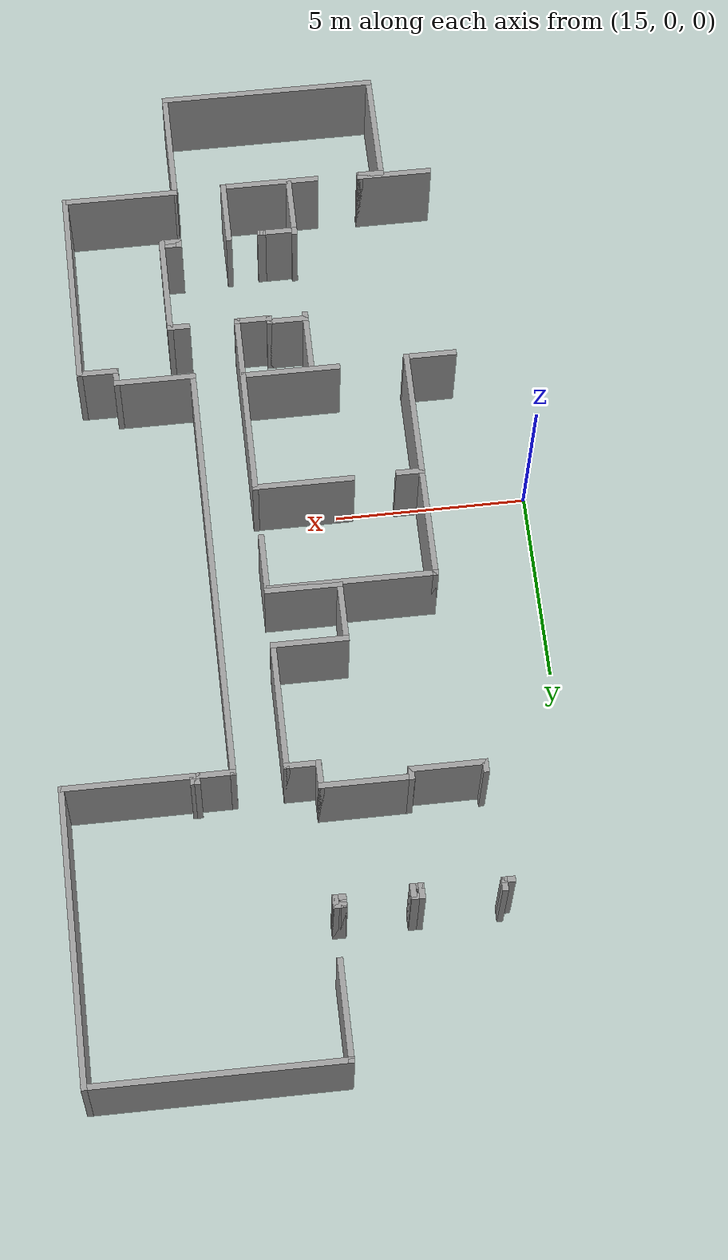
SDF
<sdf version="1.7">
 <model name="NursingHome">
  <pose>-0.88842 0.073115 0 0 -0 0</pose>
  <link name="Wall_11">
   <collision name="Wall_11_Collision">
    <geometry><box><size>0.199602 0.15 2.5</size></box></geometry>
    <pose>0 0 1.25 0 -0 0</pose>
   </collision>
   <visual name="Wall_11_Visual">
    <pose>0 0 1.25 0 -0 0</pose>
    <geometry><box><size>0.199602 0.15 2.5</size></box></geometry>
    <material>
     <script><uri>file://media/materials/scripts/gazebo.material</uri><name>Gazebo/Grey</name></script>
     <ambient>1 1 1 1</ambient>
    </material>
    <meta><layer>0</layer></meta>
   </visual>
   <pose>24.333 -9.06025 0 0 -0 1.33682</pose>
  </link>
  <link name="Wall_12">
   <collision name="Wall_12_Collision">
    <geometry><box><size>3.1 0.15 2.5</size></box></geometry>
    <pose>0 0 1.25 0 -0 0</pose>
   </collision>
   <visual name="Wall_12_Visual">
    <pose>0 0 1.25 0 -0 0</pose>
    <geometry><box><size>3.1 0.15 2.5</size></box></geometry>
    <material>
     <script><uri>file://media/materials/scripts/gazebo.material</uri><name>Gazebo/Grey</name></script>
     <ambient>1 1 1 1</ambient>
    </material>
    <meta><layer>0</layer></meta>
   </visual>
   <pose>25.8138 -9.03613 0 0 -0 0</pose>
  </link>
  <link name="Wall_17">
   <collision name="Wall_17_Collision">
    <geometry><box><size>5.4 0.15 2.5</size></box></geometry>
    <pose>0 0 1.25 0 -0 0</pose>
   </collision>
   <visual name="Wall_17_Visual">
    <pose>0 0 1.25 0 -0 0</pose>
    <geometry><box><size>5.4 0.15 2.5</size></box></geometry>
    <material>
     <script><uri>file://media/materials/scripts/gazebo.material</uri><name>Gazebo/Grey</name></script>
     <ambient>1 1 1 1</ambient>
    </material>
    <meta><layer>0</layer></meta>
   </visual>
   <pose>27.2888 -6.41113 0 0 -0 1.5708</pose>
  </link>
  <link name="Wall_19">
   <collision name="Wall_19_Collision">
    <geometry><box><size>1.1 0.15 2.5</size></box></geometry>
    <pose>0 0 1.25 0 -0 0</pose>
   </collision>
   <visual name="Wall_19_Visual">
    <pose>0 0 1.25 0 -0 0</pose>
    <geometry><box><size>1.1 0.15 2.5</size></box></geometry>
    <material>
     <script><uri>file://media/materials/scripts/gazebo.material</uri><name>Gazebo/Grey</name></script>
     <ambient>1 1 1 1</ambient>
    </material>
    <meta><layer>0</layer></meta>
   </visual>
   <pose>26.8138 -3.78613 0 0 -0 3.14159</pose>
  </link>
  <link name="Wall_21">
   <collision name="Wall_21_Collision">
    <geometry><box><size>0.5115 0.15 2.5</size></box></geometry>
    <pose>0 0 1.25 0 -0 0</pose>
   </collision>
   <visual name="Wall_21_Visual">
    <pose>0 0 1.25 0 -0 0</pose>
    <geometry><box><size>0.5115 0.15 2.5</size></box></geometry>
    <material>
     <script><uri>file://media/materials/scripts/gazebo.material</uri><name>Gazebo/Grey</name></script>
     <ambient>1 1 1 1</ambient>
    </material>
    <meta><layer>0</layer></meta>
   </visual>
   <pose>26.3388 -3.60538 0 0 -0 1.5708</pose>
  </link>
  <link name="Wall_22">
   <collision name="Wall_22_Collision">
    <geometry><box><size>2.15 0.15 2.5</size></box></geometry>
    <pose>0 0 1.25 0 -0 0</pose>
   </collision>
   <visual name="Wall_22_Visual">
    <pose>0 0 1.25 0 -0 0</pose>
    <geometry><box><size>2.15 0.15 2.5</size></box></geometry>
    <material>
     <script><uri>file://media/materials/scripts/gazebo.material</uri><name>Gazebo/Grey</name></script>
     <ambient>1 1 1 1</ambient>
    </material>
    <meta><layer>0</layer></meta>
   </visual>
   <pose>25.3388 -3.42463 0 0 -0 3.14159</pose>
  </link>
  <link name="Wall_26">
   <collision name="Wall_26_Collision">
    <geometry><box><size>11.25 0.15 2.5</size></box></geometry>
    <pose>0 0 1.25 0 -0 0</pose>
   </collision>
   <visual name="Wall_26_Visual">
    <pose>0 0 1.25 0 -0 0</pose>
    <geometry><box><size>11.25 0.15 2.5</size></box></geometry>
    <material>
     <script><uri>file://media/materials/scripts/gazebo.material</uri><name>Gazebo/Grey</name></script>
     <ambient>1 1 1 1</ambient>
    </material>
    <meta><layer>0</layer></meta>
   </visual>
   <pose>24.3388 2.12537 0 0 -0 1.5708</pose>
  </link>
  <link name="Wall_28">
   <collision name="Wall_28_Collision">
    <geometry><box><size>1.05 0.15 2.5</size></box></geometry>
    <pose>0 0 1.25 0 -0 0</pose>
   </collision>
   <visual name="Wall_28_Visual">
    <pose>0 0 1.25 0 -0 0</pose>
    <geometry><box><size>1.05 0.15 2.5</size></box></geometry>
    <material>
     <script><uri>file://media/materials/scripts/gazebo.material</uri><name>Gazebo/Grey</name></script>
     <ambient>1 1 1 1</ambient>
    </material>
    <meta><layer>0</layer></meta>
   </visual>
   <pose>24.7888 7.67537 0 0 -0 0</pose>
  </link>
  <link name="Wall_35">
   <collision name="Wall_35_Collision">
    <geometry><box><size>0.3 0.15 2.5</size></box></geometry>
    <pose>0 0 1.25 0 -0 0</pose>
   </collision>
   <visual name="Wall_35_Visual">
    <pose>0 0 1.25 0 -0 0</pose>
    <geometry><box><size>0.3 0.15 2.5</size></box></geometry>
    <material>
     <script><uri>file://media/materials/scripts/gazebo.material</uri><name>Gazebo/Grey</name></script>
     <ambient>1 1 1 1</ambient>
    </material>
    <meta><layer>0</layer></meta>
   </visual>
   <pose>25.2388 7.75037 0 0 -0 1.5708</pose>
  </link>
  <link name="Wall_38">
   <collision name="Wall_38_Collision">
    <geometry><box><size>0.25 0.15 2.5</size></box></geometry>
    <pose>0 0 1.25 0 -0 0</pose>
   </collision>
   <visual name="Wall_38_Visual">
    <pose>0 0 1.25 0 -0 0</pose>
    <geometry><box><size>0.25 0.15 2.5</size></box></geometry>
    <material>
     <script><uri>file://media/materials/scripts/gazebo.material</uri><name>Gazebo/Grey</name></script>
     <ambient>1 1 1 1</ambient>
    </material>
    <meta><layer>0</layer></meta>
   </visual>
   <pose>25.2888 7.67537 0 0 -0 0</pose>
  </link>
  <link name="Wall_39">
   <collision name="Wall_39_Collision">
    <geometry><box><size>0.3 0.15 2.5</size></box></geometry>
    <pose>0 0 1.25 0 -0 0</pose>
   </collision>
   <visual name="Wall_39_Visual">
    <pose>0 0 1.25 0 -0 0</pose>
    <geometry><box><size>0.3 0.15 2.5</size></box></geometry>
    <material>
     <script><uri>file://media/materials/scripts/gazebo.material</uri><name>Gazebo/Grey</name></script>
     <ambient>1 1 1 1</ambient>
    </material>
    <meta><layer>0</layer></meta>
   </visual>
   <pose>25.3388 7.75037 0 0 -0 1.5708</pose>
  </link>
  <link name="Wall_42">
   <collision name="Wall_42_Collision">
    <geometry><box><size>3.4 0.15 2.5</size></box></geometry>
    <pose>0 0 1.25 0 -0 0</pose>
   </collision>
   <visual name="Wall_42_Visual">
    <pose>0 0 1.25 0 -0 0</pose>
    <geometry><box><size>3.4 0.15 2.5</size></box></geometry>
    <material>
     <script><uri>file://media/materials/scripts/gazebo.material</uri><name>Gazebo/Grey</name></script>
     <ambient>1 1 1 1</ambient>
    </material>
    <meta><layer>0</layer></meta>
   </visual>
   <pose>26.9638 7.67537 0 0 -0 0</pose>
  </link>
  <link name="Wall_45">
   <collision name="Wall_45_Collision">
    <geometry><box><size>7.65 0.15 2.5</size></box></geometry>
    <pose>0 0 1.25 0 -0 0</pose>
   </collision>
   <visual name="Wall_45_Visual">
    <pose>0 0 1.25 0 -0 0</pose>
    <geometry><box><size>7.65 0.15 2.5</size></box></geometry>
    <material>
     <script><uri>file://media/materials/scripts/gazebo.material</uri><name>Gazebo/Grey</name></script>
     <ambient>1 1 1 1</ambient>
    </material>
    <meta><layer>0</layer></meta>
   </visual>
   <pose>28.5888 11.4254 0 0 -0 1.5708</pose>
  </link>
  <link name="Wall_47">
   <collision name="Wall_47_Collision">
    <geometry><box><size>6.5 0.15 2.5</size></box></geometry>
    <pose>0 0 1.25 0 -0 0</pose>
   </collision>
   <visual name="Wall_47_Visual">
    <pose>0 0 1.25 0 -0 0</pose>
    <geometry><box><size>6.5 0.15 2.5</size></box></geometry>
    <material>
     <script><uri>file://media/materials/scripts/gazebo.material</uri><name>Gazebo/Grey</name></script>
     <ambient>1 1 1 1</ambient>
    </material>
    <meta><layer>0</layer></meta>
   </visual>
   <pose>25.4138 15.1754 0 0 -0 3.14159</pose>
  </link>
  <link name="Wall_470">
   <collision name="Wall_470_Collision">
    <geometry><box><size>0.35 0.15 2.5</size></box></geometry>
    <pose>0 0 1.25 0 -0 0</pose>
   </collision>
   <visual name="Wall_470_Visual">
    <pose>0 0 1.25 0 -0 0</pose>
    <geometry><box><size>0.35 0.15 2.5</size></box></geometry>
    <material>
     <script><uri>file://media/materials/scripts/gazebo.material</uri><name>Gazebo/Grey</name></script>
     <ambient>1 1 1 1</ambient>
    </material>
    <meta><layer>0</layer></meta>
   </visual>
   <pose>18.1162 8.14787 0 0 -0 -1.5708</pose>
  </link>
  <link name="Wall_473">
   <collision name="Wall_473_Collision">
    <geometry><box><size>2 0.15 2.5</size></box></geometry>
    <pose>0 0 1.25 0 -0 0</pose>
   </collision>
   <visual name="Wall_473_Visual">
    <pose>0 0 1.25 0 -0 0</pose>
    <geometry><box><size>2 0.15 2.5</size></box></geometry>
    <material>
     <script><uri>file://media/materials/scripts/gazebo.material</uri><name>Gazebo/Grey</name></script>
     <ambient>1 1 1 1</ambient>
    </material>
    <meta><layer>0</layer></meta>
   </visual>
   <pose>19.0412 8.04787 0 0 -0 0</pose>
  </link>
  <link name="Wall_474">
   <collision name="Wall_474_Collision">
    <geometry><box><size>0.35 0.15 2.5</size></box></geometry>
    <pose>0 0 1.25 0 -0 0</pose>
   </collision>
   <visual name="Wall_474_Visual">
    <pose>0 0 1.25 0 -0 0</pose>
    <geometry><box><size>0.35 0.15 2.5</size></box></geometry>
    <material>
     <script><uri>file://media/materials/scripts/gazebo.material</uri><name>Gazebo/Grey</name></script>
     <ambient>1 1 1 1</ambient>
    </material>
    <meta><layer>0</layer></meta>
   </visual>
   <pose>19.9662 8.14787 0 0 -0 1.5708</pose>
  </link>
  <link name="Wall_477">
   <collision name="Wall_477_Collision">
    <geometry><box><size>2.4 0.15 2.5</size></box></geometry>
    <pose>0 0 1.25 0 -0 0</pose>
   </collision>
   <visual name="Wall_477_Visual">
    <pose>0 0 1.25 0 -0 0</pose>
    <geometry><box><size>2.4 0.15 2.5</size></box></geometry>
    <material>
     <script><uri>file://media/materials/scripts/gazebo.material</uri><name>Gazebo/Grey</name></script>
     <ambient>1 1 1 1</ambient>
    </material>
    <meta><layer>0</layer></meta>
   </visual>
   <pose>21.0912 8.24787 0 0 -0 0</pose>
  </link>
  <link name="Wall_479">
   <collision name="Wall_479_Collision">
    <geometry><box><size>0.75 0.15 2.5</size></box></geometry>
    <pose>0 0 1.25 0 -0 0</pose>
   </collision>
   <visual name="Wall_479_Visual">
    <pose>0 0 1.25 0 -0 0</pose>
    <geometry><box><size>0.75 0.15 2.5</size></box></geometry>
    <material>
     <script><uri>file://media/materials/scripts/gazebo.material</uri><name>Gazebo/Grey</name></script>
     <ambient>1 1 1 1</ambient>
    </material>
    <meta><layer>0</layer></meta>
   </visual>
   <pose>22.2162 7.94787 0 0 -0 -1.5708</pose>
  </link>
  <link name="Wall_48">
   <collision name="Wall_48_Collision">
    <geometry><box><size>2.6 0.15 2.5</size></box></geometry>
    <pose>0 0 1.25 0 -0 0</pose>
   </collision>
   <visual name="Wall_48_Visual">
    <pose>0 0 1.25 0 -0 0</pose>
    <geometry><box><size>2.6 0.15 2.5</size></box></geometry>
    <material>
     <script><uri>file://media/materials/scripts/gazebo.material</uri><name>Gazebo/Grey</name></script>
     <ambient>1 1 1 1</ambient>
    </material>
    <meta><layer>0</layer></meta>
   </visual>
   <pose>22.2388 13.9504 0 0 -0 -1.5708</pose>
  </link>
  <link name="Wall_480">
   <collision name="Wall_480_Collision">
    <geometry><box><size>0.95 0.15 2.5</size></box></geometry>
    <pose>0 0 1.25 0 -0 0</pose>
   </collision>
   <visual name="Wall_480_Visual">
    <pose>0 0 1.25 0 -0 0</pose>
    <geometry><box><size>0.95 0.15 2.5</size></box></geometry>
    <material>
     <script><uri>file://media/materials/scripts/gazebo.material</uri><name>Gazebo/Grey</name></script>
     <ambient>1 1 1 1</ambient>
    </material>
    <meta><layer>0</layer></meta>
   </visual>
   <pose>22.6162 7.64787 0 0 -0 0</pose>
  </link>
  <link name="Wall_484">
   <collision name="Wall_484_Collision">
    <geometry><box><size>3.4 0.15 2.5</size></box></geometry>
    <pose>0 0 1.25 0 -0 0</pose>
   </collision>
   <visual name="Wall_484_Visual">
    <pose>0 0 1.25 0 -0 0</pose>
    <geometry><box><size>3.4 0.15 2.5</size></box></geometry>
    <material>
     <script><uri>file://media/materials/scripts/gazebo.material</uri><name>Gazebo/Grey</name></script>
     <ambient>1 1 1 1</ambient>
    </material>
    <meta><layer>0</layer></meta>
   </visual>
   <pose>23.0162 6.02287 0 0 -0 -1.5708</pose>
  </link>
  <link name="Wall_486">
   <collision name="Wall_486_Collision">
    <geometry><box><size>2 0.15 2.5</size></box></geometry>
    <pose>0 0 1.25 0 -0 0</pose>
   </collision>
   <visual name="Wall_486_Visual">
    <pose>0 0 1.25 0 -0 0</pose>
    <geometry><box><size>2 0.15 2.5</size></box></geometry>
    <material>
     <script><uri>file://media/materials/scripts/gazebo.material</uri><name>Gazebo/Grey</name></script>
     <ambient>1 1 1 1</ambient>
    </material>
    <meta><layer>0</layer></meta>
   </visual>
   <pose>22.0912 4.39787 0 0 -0 3.14159</pose>
  </link>
  <link name="Wall_488">
   <collision name="Wall_488_Collision">
    <geometry><box><size>1.65 0.15 2.5</size></box></geometry>
    <pose>0 0 1.25 0 -0 0</pose>
   </collision>
   <visual name="Wall_488_Visual">
    <pose>0 0 1.25 0 -0 0</pose>
    <geometry><box><size>1.65 0.15 2.5</size></box></geometry>
    <material>
     <script><uri>file://media/materials/scripts/gazebo.material</uri><name>Gazebo/Grey</name></script>
     <ambient>1 1 1 1</ambient>
    </material>
    <meta><layer>0</layer></meta>
   </visual>
   <pose>21.1662 3.64787 0 0 -0 -1.5708</pose>
  </link>
  <link name="Wall_490">
   <collision name="Wall_490_Collision">
    <geometry><box><size>2 0.15 2.5</size></box></geometry>
    <pose>0 0 1.25 0 -0 0</pose>
   </collision>
   <visual name="Wall_490_Visual">
    <pose>0 0 1.25 0 -0 0</pose>
    <geometry><box><size>2 0.15 2.5</size></box></geometry>
    <material>
     <script><uri>file://media/materials/scripts/gazebo.material</uri><name>Gazebo/Grey</name></script>
     <ambient>1 1 1 1</ambient>
    </material>
    <meta><layer>0</layer></meta>
   </visual>
   <pose>22.0912 2.89787 0 0 -0 0</pose>
  </link>
  <link name="Wall_492">
   <collision name="Wall_492_Collision">
    <geometry><box><size>1.65 0.15 2.5</size></box></geometry>
    <pose>0 0 1.25 0 -0 0</pose>
   </collision>
   <visual name="Wall_492_Visual">
    <pose>0 0 1.25 0 -0 0</pose>
    <geometry><box><size>1.65 0.15 2.5</size></box></geometry>
    <material>
     <script><uri>file://media/materials/scripts/gazebo.material</uri><name>Gazebo/Grey</name></script>
     <ambient>1 1 1 1</ambient>
    </material>
    <meta><layer>0</layer></meta>
   </visual>
   <pose>23.0162 2.14787 0 0 -0 -1.5708</pose>
  </link>
  <link name="Wall_495">
   <collision name="Wall_495_Collision">
    <geometry><box><size>3.05 0.15 2.5</size></box></geometry>
    <pose>0 0 1.25 0 -0 0</pose>
   </collision>
   <visual name="Wall_495_Visual">
    <pose>0 0 1.25 0 -0 0</pose>
    <geometry><box><size>3.05 0.15 2.5</size></box></geometry>
    <material>
     <script><uri>file://media/materials/scripts/gazebo.material</uri><name>Gazebo/Grey</name></script>
     <ambient>1 1 1 1</ambient>
    </material>
    <meta><layer>0</layer></meta>
   </visual>
   <pose>18.7091 1.38815 0 0 -0 -1.5708</pose>
  </link>
  <link name="Wall_497">
   <collision name="Wall_497_Collision">
    <geometry><box><size>0.75 0.15 2.5</size></box></geometry>
    <pose>0 0 1.25 0 -0 0</pose>
   </collision>
   <visual name="Wall_497_Visual">
    <pose>0 0 1.25 0 -0 0</pose>
    <geometry><box><size>0.75 0.15 2.5</size></box></geometry>
    <material>
     <script><uri>file://media/materials/scripts/gazebo.material</uri><name>Gazebo/Grey</name></script>
     <ambient>1 1 1 1</ambient>
    </material>
    <meta><layer>0</layer></meta>
   </visual>
   <pose>19.0091 -0.061852 0 0 -0 0</pose>
  </link>
  <link name="Wall_5">
   <collision name="Wall_5_Collision">
    <geometry><box><size>3.05464 0.15 2.5</size></box></geometry>
    <pose>0 0 1.25 0 -0 0</pose>
   </collision>
   <visual name="Wall_5_Visual">
    <pose>0 0 1.25 0 -0 0</pose>
    <geometry><box><size>3.05464 0.15 2.5</size></box></geometry>
    <material>
     <script><uri>file://media/materials/scripts/gazebo.material</uri><name>Gazebo/Grey</name></script>
     <ambient>1 1 1 1</ambient>
    </material>
    <meta><layer>0</layer></meta>
   </visual>
   <pose>18.7316 -10.5336 0 0 -0 1.57573</pose>
  </link>
  <link name="Wall_500">
   <collision name="Wall_500_Collision">
    <geometry><box><size>4.4 0.15 2.5</size></box></geometry>
    <pose>0 0 1.25 0 -0 0</pose>
   </collision>
   <visual name="Wall_500_Visual">
    <pose>0 0 1.25 0 -0 0</pose>
    <geometry><box><size>4.4 0.15 2.5</size></box></geometry>
    <material>
     <script><uri>file://media/materials/scripts/gazebo.material</uri><name>Gazebo/Grey</name></script>
     <ambient>1 1 1 1</ambient>
    </material>
    <meta><layer>0</layer></meta>
   </visual>
   <pose>20.8341 2.83815 0 0 -0 0</pose>
  </link>
  <link name="Wall_502">
   <collision name="Wall_502_Collision">
    <geometry><box><size>2.65 0.15 2.5</size></box></geometry>
    <pose>0 0 1.25 0 -0 0</pose>
   </collision>
   <visual name="Wall_502_Visual">
    <pose>0 0 1.25 0 -0 0</pose>
    <geometry><box><size>2.65 0.15 2.5</size></box></geometry>
    <material>
     <script><uri>file://media/materials/scripts/gazebo.material</uri><name>Gazebo/Grey</name></script>
     <ambient>1 1 1 1</ambient>
    </material>
    <meta><layer>0</layer></meta>
   </visual>
   <pose>21.782 -0.034062 0 0 -0 0</pose>
  </link>
  <link name="Wall_504">
   <collision name="Wall_504_Collision">
    <geometry><box><size>0.16 0.15 2.5</size></box></geometry>
    <pose>0 0 1.25 0 -0 0</pose>
   </collision>
   <visual name="Wall_504_Visual">
    <pose>0 0 1.25 0 -0 0</pose>
    <geometry><box><size>0.16 0.15 2.5</size></box></geometry>
    <material>
     <script><uri>file://media/materials/scripts/gazebo.material</uri><name>Gazebo/Grey</name></script>
     <ambient>1 1 1 1</ambient>
    </material>
    <meta><layer>0</layer></meta>
   </visual>
   <pose>23.032 -0.029062 0 0 -0 1.5708</pose>
  </link>
  <link name="Wall_507">
   <collision name="Wall_507_Collision">
    <geometry><box><size>5.05 0.15 2.5</size></box></geometry>
    <pose>0 0 1.25 0 -0 0</pose>
   </collision>
   <visual name="Wall_507_Visual">
    <pose>0 0 1.25 0 -0 0</pose>
    <geometry><box><size>5.05 0.15 2.5</size></box></geometry>
    <material>
     <script><uri>file://media/materials/scripts/gazebo.material</uri><name>Gazebo/Grey</name></script>
     <ambient>1 1 1 1</ambient>
    </material>
    <meta><layer>0</layer></meta>
   </visual>
   <pose>23.032 -2.48406 0 0 -0 -1.5708</pose>
  </link>
  <link name="Wall_509">
   <collision name="Wall_509_Collision">
    <geometry><box><size>3.5 0.15 2.5</size></box></geometry>
    <pose>0 0 1.25 0 -0 0</pose>
   </collision>
   <visual name="Wall_509_Visual">
    <pose>0 0 1.25 0 -0 0</pose>
    <geometry><box><size>3.5 0.15 2.5</size></box></geometry>
    <material>
     <script><uri>file://media/materials/scripts/gazebo.material</uri><name>Gazebo/Grey</name></script>
     <ambient>1 1 1 1</ambient>
    </material>
    <meta><layer>0</layer></meta>
   </visual>
   <pose>18.7091 -1.73685 0 0 -0 -1.5708</pose>
  </link>
  <link name="Wall_511">
   <collision name="Wall_511_Collision">
    <geometry><box><size>2.6 0.15 2.5</size></box></geometry>
    <pose>0 0 1.25 0 -0 0</pose>
   </collision>
   <visual name="Wall_511_Visual">
    <pose>0 0 1.25 0 -0 0</pose>
    <geometry><box><size>2.6 0.15 2.5</size></box></geometry>
    <material>
     <script><uri>file://media/materials/scripts/gazebo.material</uri><name>Gazebo/Grey</name></script>
     <ambient>1 1 1 1</ambient>
    </material>
    <meta><layer>0</layer></meta>
   </visual>
   <pose>21.7735 -3.30814 0 0 -0 3.14159</pose>
  </link>
  <link name="Wall_513">
   <collision name="Wall_513_Collision">
    <geometry><box><size>1.4 0.15 2.5</size></box></geometry>
    <pose>0 0 1.25 0 -0 0</pose>
   </collision>
   <visual name="Wall_513_Visual">
    <pose>0 0 1.25 0 -0 0</pose>
    <geometry><box><size>1.4 0.15 2.5</size></box></geometry>
    <material>
     <script><uri>file://media/materials/scripts/gazebo.material</uri><name>Gazebo/Grey</name></script>
     <ambient>1 1 1 1</ambient>
    </material>
    <meta><layer>0</layer></meta>
   </visual>
   <pose>18.0841 -3.41185 0 0 -0 3.14159</pose>
  </link>
  <link name="Wall_520">
   <collision name="Wall_520_Collision">
    <geometry><box><size>2 0.15 2.5</size></box></geometry>
    <pose>0 0 1.25 0 -0 0</pose>
   </collision>
   <visual name="Wall_520_Visual">
    <pose>0 0 1.25 0 -0 0</pose>
    <geometry><box><size>2 0.15 2.5</size></box></geometry>
    <material>
     <script><uri>file://media/materials/scripts/gazebo.material</uri><name>Gazebo/Grey</name></script>
     <ambient>1 1 1 1</ambient>
    </material>
    <meta><layer>0</layer></meta>
   </visual>
   <pose>18.3841 -9.01185 0 0 -0 0</pose>
  </link>
  <link name="Wall_521">
   <collision name="Wall_521_Collision">
    <geometry><box><size>0.2 0.15 2.5</size></box></geometry>
    <pose>0 0 1.25 0 -0 0</pose>
   </collision>
   <visual name="Wall_521_Visual">
    <pose>0 0 1.25 0 -0 0</pose>
    <geometry><box><size>0.2 0.15 2.5</size></box></geometry>
    <material>
     <script><uri>file://media/materials/scripts/gazebo.material</uri><name>Gazebo/Grey</name></script>
     <ambient>1 1 1 1</ambient>
    </material>
    <meta><layer>0</layer></meta>
   </visual>
   <pose>19.3091 -9.03685 0 0 -0 -1.5708</pose>
  </link>
  <link name="Wall_523">
   <collision name="Wall_523_Collision">
    <geometry><box><size>0.7 0.15 2.5</size></box></geometry>
    <pose>0 0 1.25 0 -0 0</pose>
   </collision>
   <visual name="Wall_523_Visual">
    <pose>0 0 1.25 0 -0 0</pose>
    <geometry><box><size>0.7 0.15 2.5</size></box></geometry>
    <material>
     <script><uri>file://media/materials/scripts/gazebo.material</uri><name>Gazebo/Grey</name></script>
     <ambient>1 1 1 1</ambient>
    </material>
    <meta><layer>0</layer></meta>
   </visual>
   <pose>18.9994 -9.08112 0 0 -0 0</pose>
  </link>
  <link name="Wall_526">
   <collision name="Wall_526_Collision">
    <geometry><box><size>2.65 0.15 2.5</size></box></geometry>
    <pose>0 0 1.25 0 -0 0</pose>
   </collision>
   <visual name="Wall_526_Visual">
    <pose>0 0 1.25 0 -0 0</pose>
    <geometry><box><size>2.65 0.15 2.5</size></box></geometry>
    <material>
     <script><uri>file://media/materials/scripts/gazebo.material</uri><name>Gazebo/Grey</name></script>
     <ambient>1 1 1 1</ambient>
    </material>
    <meta><layer>0</layer></meta>
   </visual>
   <pose>21.7601 -9.07703 0 0 -0 0</pose>
  </link>
  <link name="Wall_528">
   <collision name="Wall_528_Collision">
    <geometry><box><size>1.75 0.15 2.5</size></box></geometry>
    <pose>0 0 1.25 0 -0 0</pose>
   </collision>
   <visual name="Wall_528_Visual">
    <pose>0 0 1.25 0 -0 0</pose>
    <geometry><box><size>1.75 0.15 2.5</size></box></geometry>
    <material>
     <script><uri>file://media/materials/scripts/gazebo.material</uri><name>Gazebo/Grey</name></script>
     <ambient>1 1 1 1</ambient>
    </material>
    <meta><layer>0</layer></meta>
   </visual>
   <pose>23.0101 -8.27703 0 0 -0 1.5708</pose>
  </link>
  <link name="Wall_530">
   <collision name="Wall_530_Collision">
    <geometry><box><size>1 0.15 2.5</size></box></geometry>
    <pose>0 0 1.25 0 -0 0</pose>
   </collision>
   <visual name="Wall_530_Visual">
    <pose>0 0 1.25 0 -0 0</pose>
    <geometry><box><size>1 0.15 2.5</size></box></geometry>
    <material>
     <script><uri>file://media/materials/scripts/gazebo.material</uri><name>Gazebo/Grey</name></script>
     <ambient>1 1 1 1</ambient>
    </material>
    <meta><layer>0</layer></meta>
   </visual>
   <pose>21.6674 -7.54911 0 0 -0 3.14159</pose>
  </link>
  <link name="Wall_532">
   <collision name="Wall_532_Collision">
    <geometry><box><size>1.6 0.15 2.5</size></box></geometry>
    <pose>0 0 1.25 0 -0 0</pose>
   </collision>
   <visual name="Wall_532_Visual">
    <pose>0 0 1.25 0 -0 0</pose>
    <geometry><box><size>1.6 0.15 2.5</size></box></geometry>
    <material>
     <script><uri>file://media/materials/scripts/gazebo.material</uri><name>Gazebo/Grey</name></script>
     <ambient>1 1 1 1</ambient>
    </material>
    <meta><layer>0</layer></meta>
   </visual>
   <pose>21.2424 -8.27412 0 0 -0 -1.5708</pose>
  </link>
  <link name="Wall_534">
   <collision name="Wall_534_Collision">
    <geometry><box><size>0.22 0.15 2.5</size></box></geometry>
    <pose>0 0 1.25 0 -0 0</pose>
   </collision>
   <visual name="Wall_534_Visual">
    <pose>0 0 1.25 0 -0 0</pose>
    <geometry><box><size>0.22 0.15 2.5</size></box></geometry>
    <material>
     <script><uri>file://media/materials/scripts/gazebo.material</uri><name>Gazebo/Grey</name></script>
     <ambient>1 1 1 1</ambient>
    </material>
    <meta><layer>0</layer></meta>
   </visual>
   <pose>21.2424 -7.51412 0 0 -0 1.5708</pose>
  </link>
  <link name="Wall_536">
   <collision name="Wall_536_Collision">
    <geometry><box><size>1.75 0.15 2.5</size></box></geometry>
    <pose>0 0 1.25 0 -0 0</pose>
   </collision>
   <visual name="Wall_536_Visual">
    <pose>0 0 1.25 0 -0 0</pose>
    <geometry><box><size>1.75 0.15 2.5</size></box></geometry>
    <material>
     <script><uri>file://media/materials/scripts/gazebo.material</uri><name>Gazebo/Grey</name></script>
     <ambient>1 1 1 1</ambient>
    </material>
    <meta><layer>0</layer></meta>
   </visual>
   <pose>21.2224 -4.1543 0 0 -0 -1.5708</pose>
  </link>
  <link name="Wall_538">
   <collision name="Wall_538_Collision">
    <geometry><box><size>1 0.15 2.5</size></box></geometry>
    <pose>0 0 1.25 0 -0 0</pose>
   </collision>
   <visual name="Wall_538_Visual">
    <pose>0 0 1.25 0 -0 0</pose>
    <geometry><box><size>1 0.15 2.5</size></box></geometry>
    <material>
     <script><uri>file://media/materials/scripts/gazebo.material</uri><name>Gazebo/Grey</name></script>
     <ambient>1 1 1 1</ambient>
    </material>
    <meta><layer>0</layer></meta>
   </visual>
   <pose>22.607 -4.93406 0 0 -0 3.14159</pose>
  </link>
  <link name="Wall_539">
   <collision name="Wall_539_Collision">
    <geometry><box><size>0.25 0.15 2.5</size></box></geometry>
    <pose>0 0 1.25 0 -0 0</pose>
   </collision>
   <visual name="Wall_539_Visual">
    <pose>0 0 1.25 0 -0 0</pose>
    <geometry><box><size>0.25 0.15 2.5</size></box></geometry>
    <material>
     <script><uri>file://media/materials/scripts/gazebo.material</uri><name>Gazebo/Grey</name></script>
     <ambient>1 1 1 1</ambient>
    </material>
    <meta><layer>0</layer></meta>
   </visual>
   <pose>22.182 -4.88406 0 0 -0 1.5708</pose>
  </link>
  <link name="Wall_540">
   <collision name="Wall_540_Collision">
    <geometry><box><size>1.1 0.15 2.5</size></box></geometry>
    <pose>0 0 1.25 0 -0 0</pose>
   </collision>
   <visual name="Wall_540_Visual">
    <pose>0 0 1.25 0 -0 0</pose>
    <geometry><box><size>1.1 0.15 2.5</size></box></geometry>
    <material>
     <script><uri>file://media/materials/scripts/gazebo.material</uri><name>Gazebo/Grey</name></script>
     <ambient>1 1 1 1</ambient>
    </material>
    <meta><layer>0</layer></meta>
   </visual>
   <pose>21.707 -4.83406 0 0 -0 3.14159</pose>
  </link>
  <link name="Wall_542">
   <collision name="Wall_542_Collision">
    <geometry><box><size>0.6 0.15 2.5</size></box></geometry>
    <pose>0 0 1.25 0 -0 0</pose>
   </collision>
   <visual name="Wall_542_Visual">
    <pose>0 0 1.25 0 -0 0</pose>
    <geometry><box><size>0.6 0.15 2.5</size></box></geometry>
    <material>
     <script><uri>file://media/materials/scripts/gazebo.material</uri><name>Gazebo/Grey</name></script>
     <ambient>1 1 1 1</ambient>
    </material>
    <meta><layer>0</layer></meta>
   </visual>
   <pose>24.5823 -7.41971 0 0 -0 3.14159</pose>
  </link>
  <link name="Wall_544">
   <collision name="Wall_544_Collision">
    <geometry><box><size>0.25 0.15 2.5</size></box></geometry>
    <pose>0 0 1.25 0 -0 0</pose>
   </collision>
   <visual name="Wall_544_Visual">
    <pose>0 0 1.25 0 -0 0</pose>
    <geometry><box><size>0.25 0.15 2.5</size></box></geometry>
    <material>
     <script><uri>file://media/materials/scripts/gazebo.material</uri><name>Gazebo/Grey</name></script>
     <ambient>1 1 1 1</ambient>
    </material>
    <meta><layer>0</layer></meta>
   </visual>
   <pose>24.3573 -7.46991 0 0 -0 -1.56921</pose>
  </link>
  <link name="Wall_554">
   <collision name="Wall_554_Collision">
    <geometry><box><size>0.6 0.15 2.5</size></box></geometry>
    <pose>0 0 1.25 0 -0 0</pose>
   </collision>
   <visual name="Wall_554_Visual">
    <pose>0 0 1.25 0 -0 0</pose>
    <geometry><box><size>0.6 0.15 2.5</size></box></geometry>
    <material>
     <script><uri>file://media/materials/scripts/gazebo.material</uri><name>Gazebo/Grey</name></script>
     <ambient>1 1 1 1</ambient>
    </material>
    <meta><layer>0</layer></meta>
   </visual>
   <pose>24.5824 -7.52011 0 0 -0 0</pose>
  </link>
  <link name="Wall_557">
   <collision name="Wall_557_Collision">
    <geometry><box><size>2.75 0.15 2.5</size></box></geometry>
    <pose>0 0 1.25 0 -0 0</pose>
   </collision>
   <visual name="Wall_557_Visual">
    <pose>0 0 1.25 0 -0 0</pose>
    <geometry><box><size>2.75 0.15 2.5</size></box></geometry>
    <material>
     <script><uri>file://media/materials/scripts/gazebo.material</uri><name>Gazebo/Grey</name></script>
     <ambient>1 1 1 1</ambient>
    </material>
    <meta><layer>0</layer></meta>
   </visual>
   <pose>24.8074 -6.22011 0 0 -0 1.5708</pose>
  </link>
  <link name="Wall_558">
   <collision name="Wall_558_Collision">
    <geometry><box><size>0.6 0.15 2.5</size></box></geometry>
    <pose>0 0 1.25 0 -0 0</pose>
   </collision>
   <visual name="Wall_558_Visual">
    <pose>0 0 1.25 0 -0 0</pose>
    <geometry><box><size>0.6 0.15 2.5</size></box></geometry>
    <material>
     <script><uri>file://media/materials/scripts/gazebo.material</uri><name>Gazebo/Grey</name></script>
     <ambient>1 1 1 1</ambient>
    </material>
    <meta><layer>0</layer></meta>
   </visual>
   <pose>24.5824 -4.92012 0 0 -0 3.14159</pose>
  </link>
  <link name="Wall_566">
   <collision name="Wall_566_Collision">
    <geometry><box><size>0.35 0.15 2.5</size></box></geometry>
    <pose>0 0 1.25 0 -0 0</pose>
   </collision>
   <visual name="Wall_566_Visual">
    <pose>0 0 1.25 0 -0 0</pose>
    <geometry><box><size>0.35 0.15 2.5</size></box></geometry>
    <material>
     <script><uri>file://media/materials/scripts/gazebo.material</uri><name>Gazebo/Grey</name></script>
     <ambient>1 1 1 1</ambient>
    </material>
    <meta><layer>0</layer></meta>
   </visual>
   <pose>17.9534 11.1279 0 0 -0 0</pose>
  </link>
  <link name="Wall_572">
   <collision name="Wall_572_Collision">
    <geometry><box><size>0.35 0.15 2.5</size></box></geometry>
    <pose>0 0 1.25 0 -0 0</pose>
   </collision>
   <visual name="Wall_572_Visual">
    <pose>0 0 1.25 0 -0 0</pose>
    <geometry><box><size>0.35 0.15 2.5</size></box></geometry>
    <material>
     <script><uri>file://media/materials/scripts/gazebo.material</uri><name>Gazebo/Grey</name></script>
     <ambient>1 1 1 1</ambient>
    </material>
    <meta><layer>0</layer></meta>
   </visual>
   <pose>18.0534 11.2279 0 0 -0 1.5708</pose>
  </link>
  <link name="Wall_587">
   <collision name="Wall_587_Collision">
    <geometry><box><size>0.35 0.15 2.5</size></box></geometry>
    <pose>0 0 1.25 0 -0 0</pose>
   </collision>
   <visual name="Wall_587_Visual">
    <pose>0 0 1.25 0 -0 0</pose>
    <geometry><box><size>0.35 0.15 2.5</size></box></geometry>
    <material>
     <script><uri>file://media/materials/scripts/gazebo.material</uri><name>Gazebo/Grey</name></script>
     <ambient>1 1 1 1</ambient>
    </material>
    <meta><layer>0</layer></meta>
   </visual>
   <pose>20.1824 11.0649 0 0 -0 3.14159</pose>
  </link>
  <link name="Wall_589">
   <collision name="Wall_589_Collision">
    <geometry><box><size>0.35 0.15 2.5</size></box></geometry>
    <pose>0 0 1.25 0 -0 0</pose>
   </collision>
   <visual name="Wall_589_Visual">
    <pose>0 0 1.25 0 -0 0</pose>
    <geometry><box><size>0.35 0.15 2.5</size></box></geometry>
    <material>
     <script><uri>file://media/materials/scripts/gazebo.material</uri><name>Gazebo/Grey</name></script>
     <ambient>1 1 1 1</ambient>
    </material>
    <meta><layer>0</layer></meta>
   </visual>
   <pose>20.2824 11.1649 0 0 -0 1.5708</pose>
  </link>
  <link name="Wall_594">
   <collision name="Wall_594_Collision">
    <geometry><box><size>0.407187 0.15 2.5</size></box></geometry>
    <pose>0 0 1.25 0 -0 0</pose>
   </collision>
   <visual name="Wall_594_Visual">
    <pose>0 0 1.25 0 -0 0</pose>
    <geometry><box><size>0.407187 0.15 2.5</size></box></geometry>
    <material>
     <script><uri>file://media/materials/scripts/gazebo.material</uri><name>Gazebo/Grey</name></script>
     <ambient>1 1 1 1</ambient>
    </material>
    <meta><layer>0</layer></meta>
   </visual>
   <pose>20.0812 11.1935 0 0 -0 1.58046</pose>
  </link>
  <link name="Wall_597">
   <collision name="Wall_597_Collision">
    <geometry><box><size>0.35 0.15 2.5</size></box></geometry>
    <pose>0 0 1.25 0 -0 0</pose>
   </collision>
   <visual name="Wall_597_Visual">
    <pose>0 0 1.25 0 -0 0</pose>
    <geometry><box><size>0.35 0.15 2.5</size></box></geometry>
    <material>
     <script><uri>file://media/materials/scripts/gazebo.material</uri><name>Gazebo/Grey</name></script>
     <ambient>1 1 1 1</ambient>
    </material>
    <meta><layer>0</layer></meta>
   </visual>
   <pose>20.1799 11.3196 0 0 -0 0</pose>
  </link>
  <link name="Wall_599">
   <collision name="Wall_599_Collision">
    <geometry><box><size>0.35 0.15 2.5</size></box></geometry>
    <pose>0 0 1.25 0 -0 0</pose>
   </collision>
   <visual name="Wall_599_Visual">
    <pose>0 0 1.25 0 -0 0</pose>
    <geometry><box><size>0.35 0.15 2.5</size></box></geometry>
    <material>
     <script><uri>file://media/materials/scripts/gazebo.material</uri><name>Gazebo/Grey</name></script>
     <ambient>1 1 1 1</ambient>
    </material>
    <meta><layer>0</layer></meta>
   </visual>
   <pose>22.0884 11.1469 0 0 -0 0</pose>
  </link>
  <link name="Wall_601">
   <collision name="Wall_601_Collision">
    <geometry><box><size>0.35 0.15 2.5</size></box></geometry>
    <pose>0 0 1.25 0 -0 0</pose>
   </collision>
   <visual name="Wall_601_Visual">
    <pose>0 0 1.25 0 -0 0</pose>
    <geometry><box><size>0.35 0.15 2.5</size></box></geometry>
    <material>
     <script><uri>file://media/materials/scripts/gazebo.material</uri><name>Gazebo/Grey</name></script>
     <ambient>1 1 1 1</ambient>
    </material>
    <meta><layer>0</layer></meta>
   </visual>
   <pose>21.9884 11.2469 0 0 -0 1.5708</pose>
  </link>
  <link name="Wall_604">
   <collision name="Wall_604_Collision">
    <geometry><box><size>0.35 0.15 2.5</size></box></geometry>
    <pose>0 0 1.25 0 -0 0</pose>
   </collision>
   <visual name="Wall_604_Visual">
    <pose>0 0 1.25 0 -0 0</pose>
    <geometry><box><size>0.35 0.15 2.5</size></box></geometry>
    <material>
     <script><uri>file://media/materials/scripts/gazebo.material</uri><name>Gazebo/Grey</name></script>
     <ambient>1 1 1 1</ambient>
    </material>
    <meta><layer>0</layer></meta>
   </visual>
   <pose>22.0884 11.3469 0 0 -0 0</pose>
  </link>
  <link name="Wall_607">
   <collision name="Wall_607_Collision">
    <geometry><box><size>0.35 0.15 2.5</size></box></geometry>
    <pose>0 0 1.25 0 -0 0</pose>
   </collision>
   <visual name="Wall_607_Visual">
    <pose>0 0 1.25 0 -0 0</pose>
    <geometry><box><size>0.35 0.15 2.5</size></box></geometry>
    <material>
     <script><uri>file://media/materials/scripts/gazebo.material</uri><name>Gazebo/Grey</name></script>
     <ambient>1 1 1 1</ambient>
    </material>
    <meta><layer>0</layer></meta>
   </visual>
   <pose>22.1884 11.2469 0 0 -0 -1.5708</pose>
  </link>
  <link name="Wall_609">
   <collision name="Wall_609_Collision">
    <geometry><box><size>0.22 0.15 2.5</size></box></geometry>
    <pose>0 0 1.25 0 -0 0</pose>
   </collision>
   <visual name="Wall_609_Visual">
    <pose>0 0 1.25 0 -0 0</pose>
    <geometry><box><size>0.22 0.15 2.5</size></box></geometry>
    <material>
     <script><uri>file://media/materials/scripts/gazebo.material</uri><name>Gazebo/Grey</name></script>
     <ambient>1 1 1 1</ambient>
    </material>
    <meta><layer>0</layer></meta>
   </visual>
   <pose>22.1274 -7.54911 0 0 -0 0</pose>
  </link>
  <link name="Wall_7">
   <collision name="Wall_7_Collision">
    <geometry><box><size>3.05177 0.15 2.5</size></box></geometry>
    <pose>0 0 1.25 0 -0 0</pose>
   </collision>
   <visual name="Wall_7_Visual">
    <pose>0 0 1.25 0 -0 0</pose>
    <geometry><box><size>3.05177 0.15 2.5</size></box></geometry>
    <material>
     <script><uri>file://media/materials/scripts/gazebo.material</uri><name>Gazebo/Grey</name></script>
     <ambient>1 1 1 1</ambient>
    </material>
    <meta><layer>0</layer></meta>
   </visual>
   <pose>24.333 -10.5353 0 0 -0 -1.56683</pose>
  </link>
  <link name="Wall_8">
   <collision name="Wall_8_Collision">
    <geometry><box><size>5.75 0.15 2.5</size></box></geometry>
    <pose>0 0 1.25 0 -0 0</pose>
   </collision>
   <visual name="Wall_8_Visual">
    <pose>0 0 1.25 0 -0 0</pose>
    <geometry><box><size>5.75 0.15 2.5</size></box></geometry>
    <material>
     <script><uri>file://media/materials/scripts/gazebo.material</uri><name>Gazebo/Grey</name></script>
     <ambient>1 1 1 1</ambient>
    </material>
    <meta><layer>0</layer></meta>
   </visual>
   <pose>21.5388 -11.9861 0 0 -0 3.14159</pose>
  </link>
  <static>1</static>
 </model>
</sdf>
